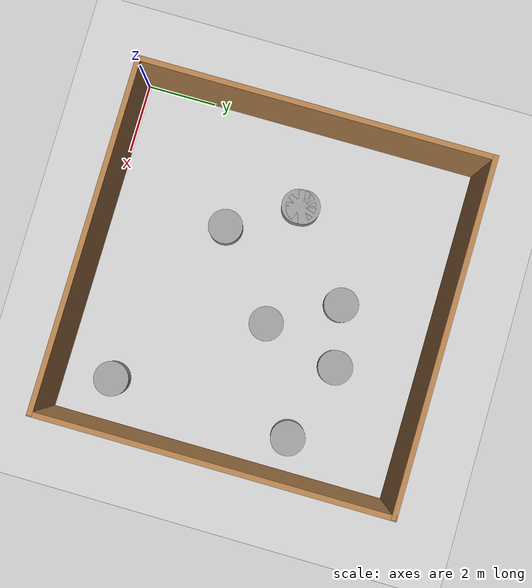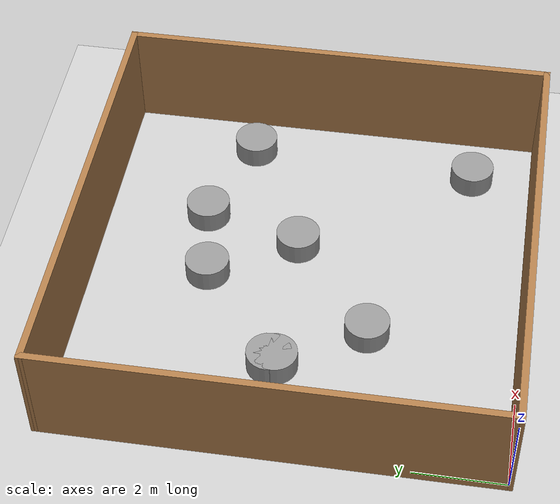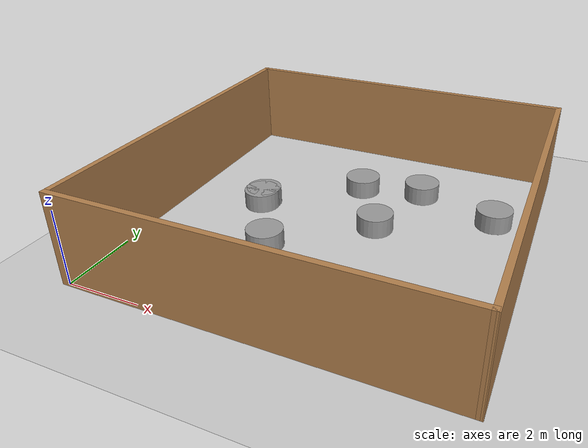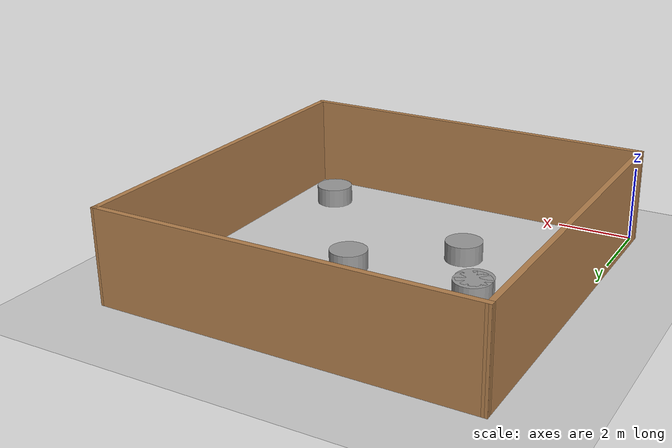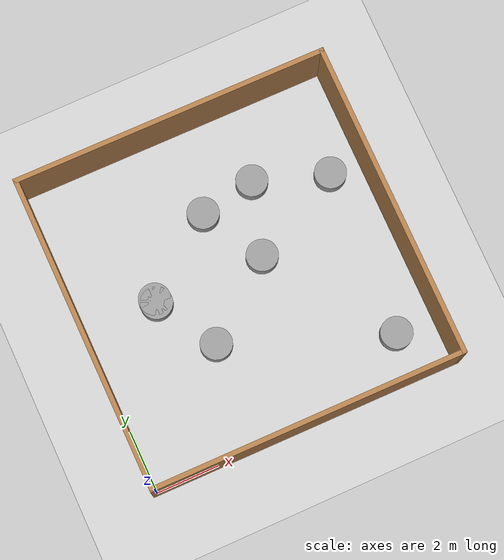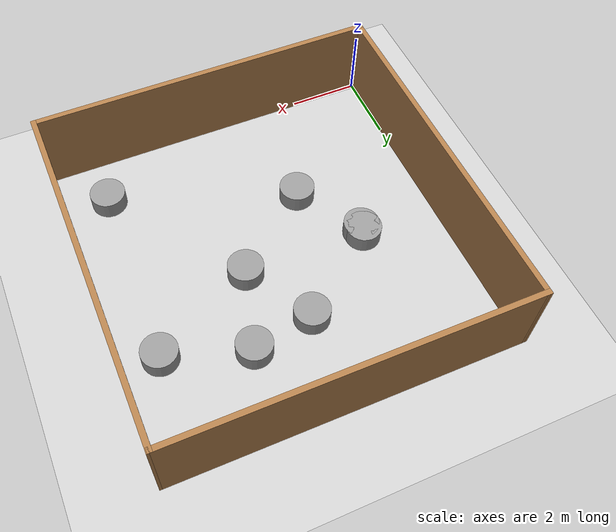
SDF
<sdf version="1.6">
 <world name="default">
  <light name="sun" type="directional">
   <pose>0 0 10 0 -0 0</pose>
   <diffuse>0.8 0.8 0.8 1</diffuse>
   <specular>0.1 0.1 0.1 1</specular>
   <attenuation>
    <range>1000</range>
    <constant>0.9</constant>
    <linear>0.01</linear>
    <quadratic>0.001</quadratic>
   </attenuation>
   <direction>-0.5 0.5 -1</direction>
  </light>
  <model name="ground_plane">
   <static>1</static>
   <link name="link">
    <collision name="collision">
     <geometry><plane><normal>0 0 1</normal><size>100 100</size></plane></geometry>
     <surface><friction><ode><mu>100</mu><mu2>50</mu2></ode></friction></surface>
    </collision>
    <visual name="visual">
     <cast_shadows>0</cast_shadows>
     <geometry><plane><normal>0 0 1</normal><size>100 100</size></plane></geometry>
     <material>
      <script><uri>file://media/materials/scripts/gazebo.material</uri><name>Gazebo/Grey</name></script>
     </material>
    </visual>
   </link>
  </model>
  <gravity>0 0 -9.8</gravity>
  <magnetic_field>6e-06 2.3e-05 -4.2e-05</magnetic_field>
  <atmosphere type="adiabatic"/>
  <physics name="default_physics" default="0" type="ode">
   <max_step_size>0.001</max_step_size>
   <real_time_factor>5</real_time_factor>
   <real_time_update_rate>5000</real_time_update_rate>
  </physics>
  <scene><ambient>0.4 0.4 0.4 1</ambient><background>0.7 0.7 0.7 1</background><shadows>1</shadows></scene>
  <spherical_coordinates>
   <surface_model>EARTH_WGS84</surface_model>
   <latitude_deg>0</latitude_deg>
   <longitude_deg>0</longitude_deg>
   <elevation>0</elevation>
   <heading_deg>0</heading_deg>
  </spherical_coordinates>
  <model name="my_wall_01">
   <pose>4.84148 4.89701 0 0 0 -0.007021</pose>
   <link name="Wall_0">
    <collision name="Wall_0_Collision">
     <geometry><box><size>9.95377 0.15 2.5</size></box></geometry>
     <pose>0 0 1.25 0 -0 0</pose>
    </collision>
    <visual name="Wall_0_Visual">
     <pose>0 0 1.25 0 -0 0</pose>
     <geometry><box><size>9.95377 0.15 2.5</size></box></geometry>
     <material>
      <script><uri>file://media/materials/scripts/gazebo.material</uri><name>Gazebo/Wood</name></script>
      <ambient>1 1 1 1</ambient>
     </material>
    </visual>
    <pose>0.034695 -4.92526 0 0 0 -3.13923</pose>
   </link>
   <link name="Wall_1">
    <collision name="Wall_1_Collision">
     <geometry><box><size>10.0004 0.15 2.5</size></box></geometry>
     <pose>0 0 1.25 0 -0 0</pose>
    </collision>
    <visual name="Wall_1_Visual">
     <pose>0 0 1.25 0 -0 0</pose>
     <geometry><box><size>10.0004 0.15 2.5</size></box></geometry>
     <material>
      <script><uri>file://media/materials/scripts/gazebo.material</uri><name>Gazebo/Wood</name></script>
      <ambient>1 1 1 1</ambient>
     </material>
    </visual>
    <pose>-4.91343 0.011303 0 0 -0 1.58019</pose>
   </link>
   <link name="Wall_2">
    <collision name="Wall_2_Collision">
     <geometry><box><size>9.95374 0.15 2.5</size></box></geometry>
     <pose>0 0 1.25 0 -0 0</pose>
    </collision>
    <visual name="Wall_2_Visual">
     <pose>0 0 1.25 0 -0 0</pose>
     <geometry><box><size>9.95374 0.15 2.5</size></box></geometry>
     <material>
      <script><uri>file://media/materials/scripts/gazebo.material</uri><name>Gazebo/Wood</name></script>
      <ambient>1 1 1 1</ambient>
     </material>
    </visual>
    <pose>-0.057827 4.9363 0 0 -0 0</pose>
   </link>
   <link name="Wall_3">
    <collision name="Wall_3_Collision">
     <geometry><box><size>10.0004 0.15 2.5</size></box></geometry>
     <pose>0 0 1.25 0 -0 0</pose>
    </collision>
    <visual name="Wall_3_Visual">
     <pose>0 0 1.25 0 -0 0</pose>
     <geometry><box><size>10.0004 0.15 2.5</size></box></geometry>
     <material>
      <script><uri>file://media/materials/scripts/gazebo.material</uri><name>Gazebo/Wood</name></script>
      <ambient>1 1 1 1</ambient>
     </material>
    </visual>
    <pose>4.91343 0.011303 0 0 0 -1.5614</pose>
   </link>
   <static>1</static>
  </model>
  <model name="c0">
   <link name="link">
    <inertial>
     <mass>0.284858</mass>
     <inertia>
      <ixx>0.0288096</ixx>
      <ixy>0</ixy>
      <ixz>0</ixz>
      <iyy>0.0288096</iyy>
      <iyz>0</iyz>
      <izz>0.010143</izz>
     </inertia>
    </inertial>
    <visual name="visual">
     <geometry><cylinder><radius>0.5</radius><length>1</length></cylinder></geometry>
     <material>
      <script><name>Gazebo/Grey</name><uri>file://media/materials/scripts/gazebo.material</uri></script>
      <ambient>0.3 0.3 0.3 1</ambient>
      <diffuse>0.7 0.7 0.7 1</diffuse>
      <specular>0.01 0.01 0.01 1</specular>
      <emissive>0 0 0 1</emissive>
      <shader type="vertex"><normal_map>__default__</normal_map></shader>
     </material>
    </visual>
    <collision name="collision">
     <geometry><cylinder><radius>0.5</radius><length>1</length></cylinder></geometry>
     <surface>
      <friction>
       <ode><mu>1</mu><mu2>1</mu2><fdir1>0 0 0</fdir1><slip1>0</slip1><slip2>0</slip2></ode>
       <torsional>
        <coefficient>1</coefficient>
        <patch_radius>0</patch_radius>
        <surface_radius>0</surface_radius>
        <use_patch_radius>1</use_patch_radius>
        <ode><slip>0</slip></ode>
       </torsional>
      </friction>
      <bounce><restitution_coefficient>0</restitution_coefficient><threshold>1e+06</threshold></bounce>
      <contact>
       <collide_without_contact>0</collide_without_contact>
       <collide_without_contact_bitmask>1</collide_without_contact_bitmask>
       <collide_bitmask>1</collide_bitmask>
       <ode>
        <soft_cfm>0</soft_cfm>
        <soft_erp>0.2</soft_erp>
        <kp>1e+13</kp>
        <kd>1</kd>
        <max_vel>0.01</max_vel>
        <min_depth>0</min_depth>
       </ode>
       <bullet>
        <split_impulse>1</split_impulse>
        <split_impulse_penetration_threshold>-0.01</split_impulse_penetration_threshold>
        <soft_cfm>0</soft_cfm>
        <soft_erp>0.2</soft_erp>
        <kp>1e+13</kp>
        <kd>1</kd>
       </bullet>
      </contact>
     </surface>
    </collision>
   </link>
   <static>1</static>
   <pose>6.4287004408277255 7.447439625251276 0 0 -0 0</pose>
  </model>
  <model name="c1">
   <link name="link">
    <inertial>
     <mass>0.284858</mass>
     <inertia>
      <ixx>0.0288096</ixx>
      <ixy>0</ixy>
      <ixz>0</ixz>
      <iyy>0.0288096</iyy>
      <iyz>0</iyz>
      <izz>0.010143</izz>
     </inertia>
    </inertial>
    <visual name="visual">
     <geometry><cylinder><radius>0.5</radius><length>1</length></cylinder></geometry>
     <material>
      <script><name>Gazebo/Grey</name><uri>file://media/materials/scripts/gazebo.material</uri></script>
      <ambient>0.3 0.3 0.3 1</ambient>
      <diffuse>0.7 0.7 0.7 1</diffuse>
      <specular>0.01 0.01 0.01 1</specular>
      <emissive>0 0 0 1</emissive>
      <shader type="vertex"><normal_map>__default__</normal_map></shader>
     </material>
    </visual>
    <collision name="collision">
     <geometry><cylinder><radius>0.5</radius><length>1</length></cylinder></geometry>
     <surface>
      <friction>
       <ode><mu>1</mu><mu2>1</mu2><fdir1>0 0 0</fdir1><slip1>0</slip1><slip2>0</slip2></ode>
       <torsional>
        <coefficient>1</coefficient>
        <patch_radius>0</patch_radius>
        <surface_radius>0</surface_radius>
        <use_patch_radius>1</use_patch_radius>
        <ode><slip>0</slip></ode>
       </torsional>
      </friction>
      <bounce><restitution_coefficient>0</restitution_coefficient><threshold>1e+06</threshold></bounce>
      <contact>
       <collide_without_contact>0</collide_without_contact>
       <collide_without_contact_bitmask>1</collide_without_contact_bitmask>
       <collide_bitmask>1</collide_bitmask>
       <ode>
        <soft_cfm>0</soft_cfm>
        <soft_erp>0.2</soft_erp>
        <kp>1e+13</kp>
        <kd>1</kd>
        <max_vel>0.01</max_vel>
        <min_depth>0</min_depth>
       </ode>
       <bullet>
        <split_impulse>1</split_impulse>
        <split_impulse_penetration_threshold>-0.01</split_impulse_penetration_threshold>
        <soft_cfm>0</soft_cfm>
        <soft_erp>0.2</soft_erp>
        <kp>1e+13</kp>
        <kd>1</kd>
       </bullet>
      </contact>
     </surface>
    </collision>
   </link>
   <static>1</static>
   <pose>4.671601460461576 7.131580767253252 0 0 -0 0</pose>
  </model>
  <model name="c2">
   <link name="link">
    <inertial>
     <mass>0.284858</mass>
     <inertia>
      <ixx>0.0288096</ixx>
      <ixy>0</ixy>
      <ixz>0</ixz>
      <iyy>0.0288096</iyy>
      <iyz>0</iyz>
      <izz>0.010143</izz>
     </inertia>
    </inertial>
    <visual name="visual">
     <geometry><cylinder><radius>0.5</radius><length>1</length></cylinder></geometry>
     <material>
      <script><name>Gazebo/Grey</name><uri>file://media/materials/scripts/gazebo.material</uri></script>
      <ambient>0.3 0.3 0.3 1</ambient>
      <diffuse>0.7 0.7 0.7 1</diffuse>
      <specular>0.01 0.01 0.01 1</specular>
      <emissive>0 0 0 1</emissive>
      <shader type="vertex"><normal_map>__default__</normal_map></shader>
     </material>
    </visual>
    <collision name="collision">
     <geometry><cylinder><radius>0.5</radius><length>1</length></cylinder></geometry>
     <surface>
      <friction>
       <ode><mu>1</mu><mu2>1</mu2><fdir1>0 0 0</fdir1><slip1>0</slip1><slip2>0</slip2></ode>
       <torsional>
        <coefficient>1</coefficient>
        <patch_radius>0</patch_radius>
        <surface_radius>0</surface_radius>
        <use_patch_radius>1</use_patch_radius>
        <ode><slip>0</slip></ode>
       </torsional>
      </friction>
      <bounce><restitution_coefficient>0</restitution_coefficient><threshold>1e+06</threshold></bounce>
      <contact>
       <collide_without_contact>0</collide_without_contact>
       <collide_without_contact_bitmask>1</collide_without_contact_bitmask>
       <collide_bitmask>1</collide_bitmask>
       <ode>
        <soft_cfm>0</soft_cfm>
        <soft_erp>0.2</soft_erp>
        <kp>1e+13</kp>
        <kd>1</kd>
        <max_vel>0.01</max_vel>
        <min_depth>0</min_depth>
       </ode>
       <bullet>
        <split_impulse>1</split_impulse>
        <split_impulse_penetration_threshold>-0.01</split_impulse_penetration_threshold>
        <soft_cfm>0</soft_cfm>
        <soft_erp>0.2</soft_erp>
        <kp>1e+13</kp>
        <kd>1</kd>
       </bullet>
      </contact>
     </surface>
    </collision>
   </link>
   <static>1</static>
   <pose>2.2789456441201583 5.188754343679885 0 0 -0 0</pose>
  </model>
  <model name="c3">
   <link name="link">
    <inertial>
     <mass>0.284858</mass>
     <inertia>
      <ixx>0.0288096</ixx>
      <ixy>0</ixy>
      <ixz>0</ixz>
      <iyy>0.0288096</iyy>
      <iyz>0</iyz>
      <izz>0.010143</izz>
     </inertia>
    </inertial>
    <visual name="visual">
     <geometry><cylinder><radius>0.5</radius><length>1</length></cylinder></geometry>
     <material>
      <script><name>Gazebo/Grey</name><uri>file://media/materials/scripts/gazebo.material</uri></script>
      <ambient>0.3 0.3 0.3 1</ambient>
      <diffuse>0.7 0.7 0.7 1</diffuse>
      <specular>0.01 0.01 0.01 1</specular>
      <emissive>0 0 0 1</emissive>
      <shader type="vertex"><normal_map>__default__</normal_map></shader>
     </material>
    </visual>
    <collision name="collision">
     <geometry><cylinder><radius>0.5</radius><length>1</length></cylinder></geometry>
     <surface>
      <friction>
       <ode><mu>1</mu><mu2>1</mu2><fdir1>0 0 0</fdir1><slip1>0</slip1><slip2>0</slip2></ode>
       <torsional>
        <coefficient>1</coefficient>
        <patch_radius>0</patch_radius>
        <surface_radius>0</surface_radius>
        <use_patch_radius>1</use_patch_radius>
        <ode><slip>0</slip></ode>
       </torsional>
      </friction>
      <bounce><restitution_coefficient>0</restitution_coefficient><threshold>1e+06</threshold></bounce>
      <contact>
       <collide_without_contact>0</collide_without_contact>
       <collide_without_contact_bitmask>1</collide_without_contact_bitmask>
       <collide_bitmask>1</collide_bitmask>
       <ode>
        <soft_cfm>0</soft_cfm>
        <soft_erp>0.2</soft_erp>
        <kp>1e+13</kp>
        <kd>1</kd>
        <max_vel>0.01</max_vel>
        <min_depth>0</min_depth>
       </ode>
       <bullet>
        <split_impulse>1</split_impulse>
        <split_impulse_penetration_threshold>-0.01</split_impulse_penetration_threshold>
        <soft_cfm>0</soft_cfm>
        <soft_erp>0.2</soft_erp>
        <kp>1e+13</kp>
        <kd>1</kd>
       </bullet>
      </contact>
     </surface>
    </collision>
   </link>
   <static>1</static>
   <pose>2.2706088797052475 5.318273062206671 0 0 -0 0</pose>
  </model>
  <model name="c4">
   <link name="link">
    <inertial>
     <mass>0.284858</mass>
     <inertia>
      <ixx>0.0288096</ixx>
      <ixy>0</ixy>
      <ixz>0</ixz>
      <iyy>0.0288096</iyy>
      <iyz>0</iyz>
      <izz>0.010143</izz>
     </inertia>
    </inertial>
    <visual name="visual">
     <geometry><cylinder><radius>0.5</radius><length>1</length></cylinder></geometry>
     <material>
      <script><name>Gazebo/Grey</name><uri>file://media/materials/scripts/gazebo.material</uri></script>
      <ambient>0.3 0.3 0.3 1</ambient>
      <diffuse>0.7 0.7 0.7 1</diffuse>
      <specular>0.01 0.01 0.01 1</specular>
      <emissive>0 0 0 1</emissive>
      <shader type="vertex"><normal_map>__default__</normal_map></shader>
     </material>
    </visual>
    <collision name="collision">
     <geometry><cylinder><radius>0.5</radius><length>1</length></cylinder></geometry>
     <surface>
      <friction>
       <ode><mu>1</mu><mu2>1</mu2><fdir1>0 0 0</fdir1><slip1>0</slip1><slip2>0</slip2></ode>
       <torsional>
        <coefficient>1</coefficient>
        <patch_radius>0</patch_radius>
        <surface_radius>0</surface_radius>
        <use_patch_radius>1</use_patch_radius>
        <ode><slip>0</slip></ode>
       </torsional>
      </friction>
      <bounce><restitution_coefficient>0</restitution_coefficient><threshold>1e+06</threshold></bounce>
      <contact>
       <collide_without_contact>0</collide_without_contact>
       <collide_without_contact_bitmask>1</collide_without_contact_bitmask>
       <collide_bitmask>1</collide_bitmask>
       <ode>
        <soft_cfm>0</soft_cfm>
        <soft_erp>0.2</soft_erp>
        <kp>1e+13</kp>
        <kd>1</kd>
        <max_vel>0.01</max_vel>
        <min_depth>0</min_depth>
       </ode>
       <bullet>
        <split_impulse>1</split_impulse>
        <split_impulse_penetration_threshold>-0.01</split_impulse_penetration_threshold>
        <soft_cfm>0</soft_cfm>
        <soft_erp>0.2</soft_erp>
        <kp>1e+13</kp>
        <kd>1</kd>
       </bullet>
      </contact>
     </surface>
    </collision>
   </link>
   <static>1</static>
   <pose>3.4158557851779436 3.3320075811444783 0 0 -0 0</pose>
  </model>
  <model name="c5">
   <link name="link">
    <inertial>
     <mass>0.284858</mass>
     <inertia>
      <ixx>0.0288096</ixx>
      <ixy>0</ixy>
      <ixz>0</ixz>
      <iyy>0.0288096</iyy>
      <iyz>0</iyz>
      <izz>0.010143</izz>
     </inertia>
    </inertial>
    <visual name="visual">
     <geometry><cylinder><radius>0.5</radius><length>1</length></cylinder></geometry>
     <material>
      <script><name>Gazebo/Grey</name><uri>file://media/materials/scripts/gazebo.material</uri></script>
      <ambient>0.3 0.3 0.3 1</ambient>
      <diffuse>0.7 0.7 0.7 1</diffuse>
      <specular>0.01 0.01 0.01 1</specular>
      <emissive>0 0 0 1</emissive>
      <shader type="vertex"><normal_map>__default__</normal_map></shader>
     </material>
    </visual>
    <collision name="collision">
     <geometry><cylinder><radius>0.5</radius><length>1</length></cylinder></geometry>
     <surface>
      <friction>
       <ode><mu>1</mu><mu2>1</mu2><fdir1>0 0 0</fdir1><slip1>0</slip1><slip2>0</slip2></ode>
       <torsional>
        <coefficient>1</coefficient>
        <patch_radius>0</patch_radius>
        <surface_radius>0</surface_radius>
        <use_patch_radius>1</use_patch_radius>
        <ode><slip>0</slip></ode>
       </torsional>
      </friction>
      <bounce><restitution_coefficient>0</restitution_coefficient><threshold>1e+06</threshold></bounce>
      <contact>
       <collide_without_contact>0</collide_without_contact>
       <collide_without_contact_bitmask>1</collide_without_contact_bitmask>
       <collide_bitmask>1</collide_bitmask>
       <ode>
        <soft_cfm>0</soft_cfm>
        <soft_erp>0.2</soft_erp>
        <kp>1e+13</kp>
        <kd>1</kd>
        <max_vel>0.01</max_vel>
        <min_depth>0</min_depth>
       </ode>
       <bullet>
        <split_impulse>1</split_impulse>
        <split_impulse_penetration_threshold>-0.01</split_impulse_penetration_threshold>
        <soft_cfm>0</soft_cfm>
        <soft_erp>0.2</soft_erp>
        <kp>1e+13</kp>
        <kd>1</kd>
       </bullet>
      </contact>
     </surface>
    </collision>
   </link>
   <static>1</static>
   <pose>8.709878943889962 6.695423810650862 0 0 -0 0</pose>
  </model>
  <model name="c6">
   <link name="link">
    <inertial>
     <mass>0.284858</mass>
     <inertia>
      <ixx>0.0288096</ixx>
      <ixy>0</ixy>
      <ixz>0</ixz>
      <iyy>0.0288096</iyy>
      <iyz>0</iyz>
      <izz>0.010143</izz>
     </inertia>
    </inertial>
    <visual name="visual">
     <geometry><cylinder><radius>0.5</radius><length>1</length></cylinder></geometry>
     <material>
      <script><name>Gazebo/Grey</name><uri>file://media/materials/scripts/gazebo.material</uri></script>
      <ambient>0.3 0.3 0.3 1</ambient>
      <diffuse>0.7 0.7 0.7 1</diffuse>
      <specular>0.01 0.01 0.01 1</specular>
      <emissive>0 0 0 1</emissive>
      <shader type="vertex"><normal_map>__default__</normal_map></shader>
     </material>
    </visual>
    <collision name="collision">
     <geometry><cylinder><radius>0.5</radius><length>1</length></cylinder></geometry>
     <surface>
      <friction>
       <ode><mu>1</mu><mu2>1</mu2><fdir1>0 0 0</fdir1><slip1>0</slip1><slip2>0</slip2></ode>
       <torsional>
        <coefficient>1</coefficient>
        <patch_radius>0</patch_radius>
        <surface_radius>0</surface_radius>
        <use_patch_radius>1</use_patch_radius>
        <ode><slip>0</slip></ode>
       </torsional>
      </friction>
      <bounce><restitution_coefficient>0</restitution_coefficient><threshold>1e+06</threshold></bounce>
      <contact>
       <collide_without_contact>0</collide_without_contact>
       <collide_without_contact_bitmask>1</collide_without_contact_bitmask>
       <collide_bitmask>1</collide_bitmask>
       <ode>
        <soft_cfm>0</soft_cfm>
        <soft_erp>0.2</soft_erp>
        <kp>1e+13</kp>
        <kd>1</kd>
        <max_vel>0.01</max_vel>
        <min_depth>0</min_depth>
       </ode>
       <bullet>
        <split_impulse>1</split_impulse>
        <split_impulse_penetration_threshold>-0.01</split_impulse_penetration_threshold>
        <soft_cfm>0</soft_cfm>
        <soft_erp>0.2</soft_erp>
        <kp>1e+13</kp>
        <kd>1</kd>
       </bullet>
      </contact>
     </surface>
    </collision>
   </link>
   <static>1</static>
   <pose>8.478415076917146 1.4239529790782148 0 0 -0 0</pose>
  </model>
  <model name="c7">
   <link name="link">
    <inertial>
     <mass>0.284858</mass>
     <inertia>
      <ixx>0.0288096</ixx>
      <ixy>0</ixy>
      <ixz>0</ixz>
      <iyy>0.0288096</iyy>
      <iyz>0</iyz>
      <izz>0.010143</izz>
     </inertia>
    </inertial>
    <visual name="visual">
     <geometry><cylinder><radius>0.5</radius><length>1</length></cylinder></geometry>
     <material>
      <script><name>Gazebo/Grey</name><uri>file://media/materials/scripts/gazebo.material</uri></script>
      <ambient>0.3 0.3 0.3 1</ambient>
      <diffuse>0.7 0.7 0.7 1</diffuse>
      <specular>0.01 0.01 0.01 1</specular>
      <emissive>0 0 0 1</emissive>
      <shader type="vertex"><normal_map>__default__</normal_map></shader>
     </material>
    </visual>
    <collision name="collision">
     <geometry><cylinder><radius>0.5</radius><length>1</length></cylinder></geometry>
     <surface>
      <friction>
       <ode><mu>1</mu><mu2>1</mu2><fdir1>0 0 0</fdir1><slip1>0</slip1><slip2>0</slip2></ode>
       <torsional>
        <coefficient>1</coefficient>
        <patch_radius>0</patch_radius>
        <surface_radius>0</surface_radius>
        <use_patch_radius>1</use_patch_radius>
        <ode><slip>0</slip></ode>
       </torsional>
      </friction>
      <bounce><restitution_coefficient>0</restitution_coefficient><threshold>1e+06</threshold></bounce>
      <contact>
       <collide_without_contact>0</collide_without_contact>
       <collide_without_contact_bitmask>1</collide_without_contact_bitmask>
       <collide_bitmask>1</collide_bitmask>
       <ode>
        <soft_cfm>0</soft_cfm>
        <soft_erp>0.2</soft_erp>
        <kp>1e+13</kp>
        <kd>1</kd>
        <max_vel>0.01</max_vel>
        <min_depth>0</min_depth>
       </ode>
       <bullet>
        <split_impulse>1</split_impulse>
        <split_impulse_penetration_threshold>-0.01</split_impulse_penetration_threshold>
        <soft_cfm>0</soft_cfm>
        <soft_erp>0.2</soft_erp>
        <kp>1e+13</kp>
        <kd>1</kd>
       </bullet>
      </contact>
     </surface>
    </collision>
   </link>
   <static>1</static>
   <pose>5.771154939855739 5.219139172071209 0 0 -0 0</pose>
  </model>
 </world>
</sdf>
